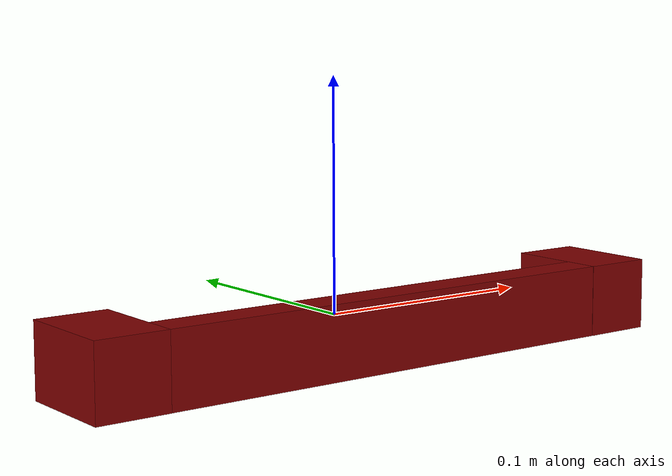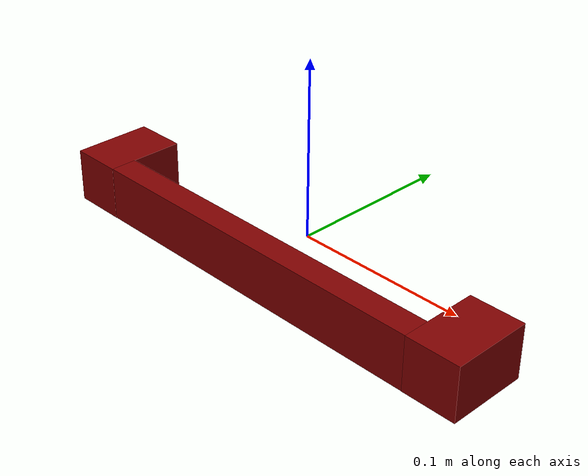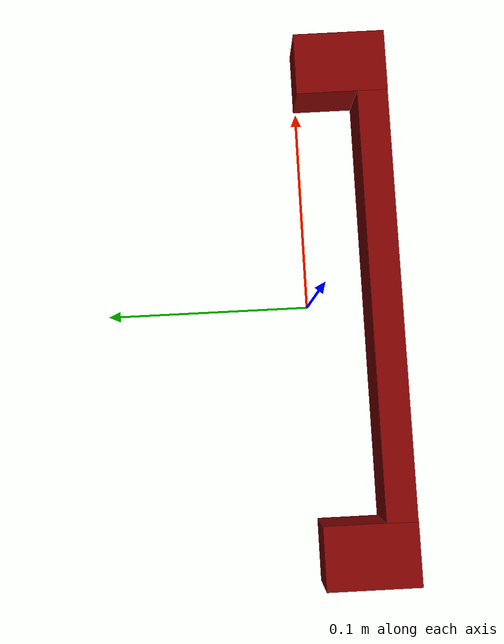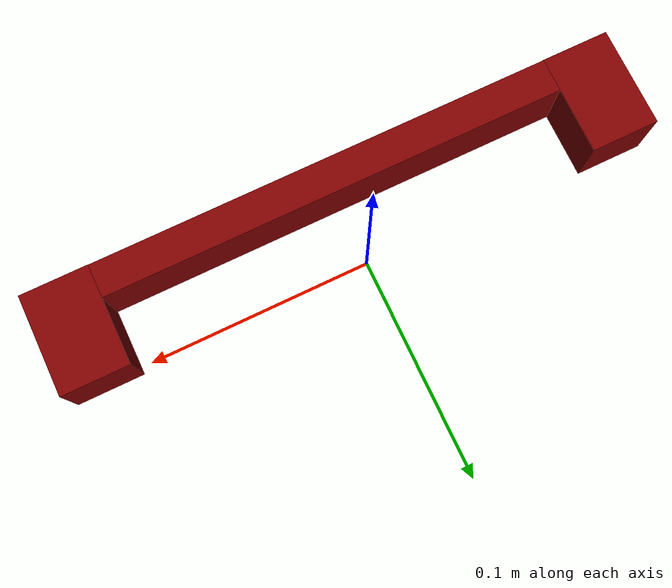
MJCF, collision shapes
<mujoco model="rectangular_handle">
  <compiler angle="radian"/>
  <asset>
    <mesh file="visuals/CabinetHandle004.obj" name="mesh"/>
    <texture file="visuals/T_CabinetHandle004_BC001.png" name="tex" type="2d"/>
    <material name="mat" rgba="1 1 1 1" texture="tex"/>
  </asset>
  <default>
    <default class="visual">
      <geom conaffinity="0" contype="0" group="1" type="mesh"/>
    </default>
    <default class="collision">
      <geom group="0" rgba="0.5 0 0 0.5"/>
    </default>
    <default class="region">
      <geom group="1" conaffinity="0" contype="0" rgba="0 1 0 0"/>
    </default>
  </default>
  <worldbody>
    <body>
      <body name="object">
        <geom mesh="mesh" type="mesh" density="0" class="visual" material="mat"/>
        <geom class="collision" density="10" type="box" pos="-0.12198906391859055 -0.023006310686469078 0.0" size="0.015403694473206997 0.022924408316612244 0.015403694473206997" quat="1.0 0.0 0.0 0.0" name="handle_connector_top"/>
        <geom class="collision" density="10" type="box" pos="0.1217641532421112 -0.023006310686469078 0.0" size="0.015403694473206997 0.022924408316612244 0.015403694473206997" quat="1.0 0.0 0.0 0.0" name="handle_connector_bottom"/>
        <geom class="collision" density="10" type="box" pos="-0.00010850653052330017 -0.03815648332238197 0.0" size="0.007646866142749786 0.10662992298603058 0.015403693541884422" quat="0.7071067690849304 0.0 -0.0 -0.7071067690849304" name="handle"/>
        <geom class="region" name="reg_bbox" density="0" type="box" pos="0.0 -0.0228705 0.0" size="0.137221 0.0228705 0.015247"/>
      </body>
    </body>
  </worldbody>
  <actuator/>
</mujoco>
